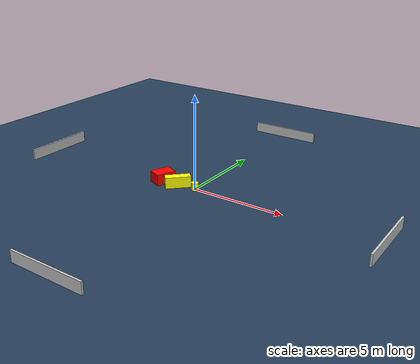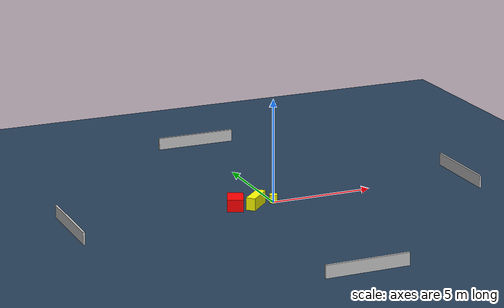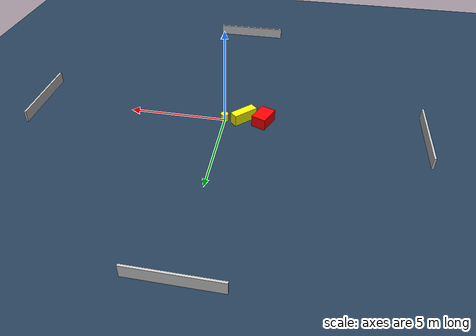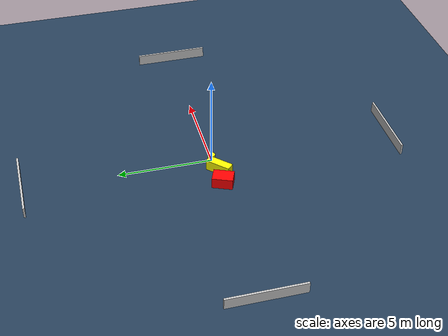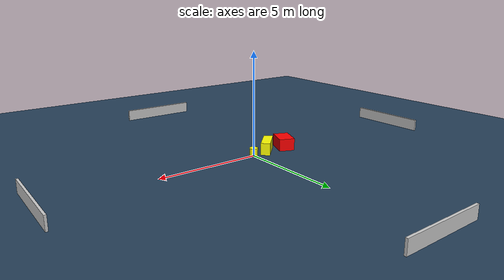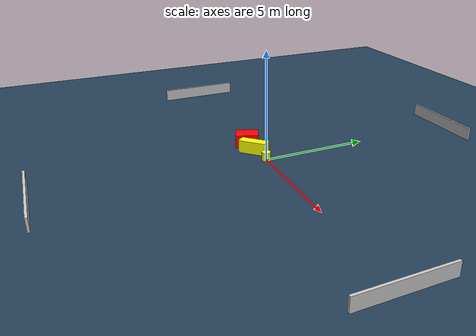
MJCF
<?xml version="1.0" ?>
<mujoco model="generated_environment">
  <option timestep="0.01" integrator="RK4" cone="elliptic"/>
  <default>
    <geom density="1"/>
  </default>
  <asset>
    <texture builtin="gradient" height="3072" name="skybox" rgb1="0.3 0.5 0.7" rgb2="0 0 0" type="skybox" width="512"/>
    <texture builtin="checker" height="300" name="groundplane" rgb1="0.2 0.3 0.4" rgb2="0.1 0.2 0.3" type="2d" width="300"/>
    <material name="groundplane" reflectance="0.2" texrepeat="5 5" texture="groundplane"/>
  </asset>
  <worldbody>
    <light dir="0 0 -1" directional="true" pos="0 0 1.5"/>
    <geom condim="3" friction="0.5 0.005 0.001" material="groundplane" name="floor" pos="0 0 0" size="0 0 0.05" type="plane"/>
    <body name="walls">
      <geom name="wall_1" condim="4" pos="-10.0 0.0 0.3" rgba="0.800000011920929 0.800000011920929 0.800000011920929 1.0" size="0.05 2.0 0.3" type="box"/>
      <geom name="wall_2" condim="4" pos="10.0 0.0 0.3" rgba="0.800000011920929 0.800000011920929 0.800000011920929 1.0" size="0.05 2.0 0.3" type="box"/>
      <geom name="wall_3" condim="4" pos="0.0 -10.0 0.3" rgba="0.800000011920929 0.800000011920929 0.800000011920929 1.0" size="2.0 0.05 0.3" type="box"/>
      <geom name="wall_4" condim="4" pos="0.0 10.0 0.3" rgba="0.800000011920929 0.800000011920929 0.800000011920929 1.0" size="2.0 0.05 0.3" type="box"/>
    </body>
    <body name="robot">
      <joint name="joint_x" type="slide" pos="0 0 0" axis="1 0 0"/>
      <joint name="joint_y" type="slide" pos="0 0 0" axis="0 1 0"/>
      <geom name="robot" type="cylinder" pos="0.0 0.0 0.2" size="0.2 0.2 0.0" mass="5.0" friction="1.0 0.005 0.0001" condim="4" rgba="1.0 1.0 0.0 1.0"/>
    </body>
    <body name="obstacle_1_movable">
      <geom name="obstacle_1_movable" condim="4" pos="-0.9632639517516778 -0.1890579657010441 0.3" euler="0 0 225.00903575347724" friction="0.0 0.005 0.001" rgba="1.0 1.0 0.0 1.0" size="0.6752402418509997 0.22338459646628828 0.3" type="box" mass="0.1"/>
      <joint type="free"/>
    </body>
    <body name="obstacle_2_static">
      <geom name="obstacle_2_static" condim="4" pos="-1.9857808973709894 -0.11861210585346633 0.3" euler="0 0 337.4821651179496" friction="0.0 0.005 0.001" rgba="1.0 0.0 0.0 1.0" size="0.37958232103791933 0.5422148358035679 0.3" type="box"/>
    </body>
  </worldbody>
  <actuator>
    <motor name="actuator_x" joint="joint_x" gear="1" ctrlrange="-1 1"/>
    <motor name="actuator_y" joint="joint_y" gear="1" ctrlrange="-1 1"/>
  </actuator>
</mujoco>
